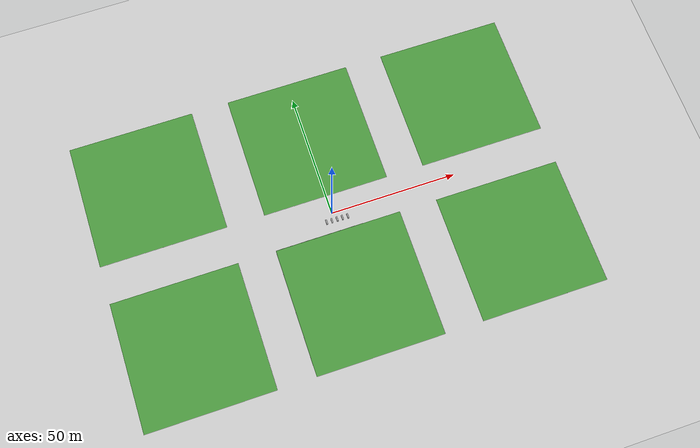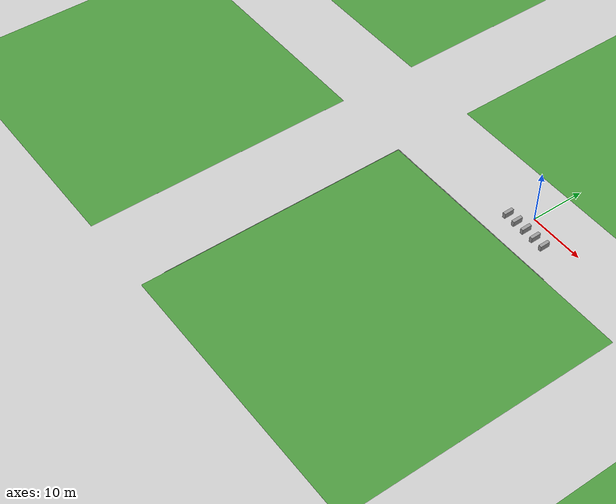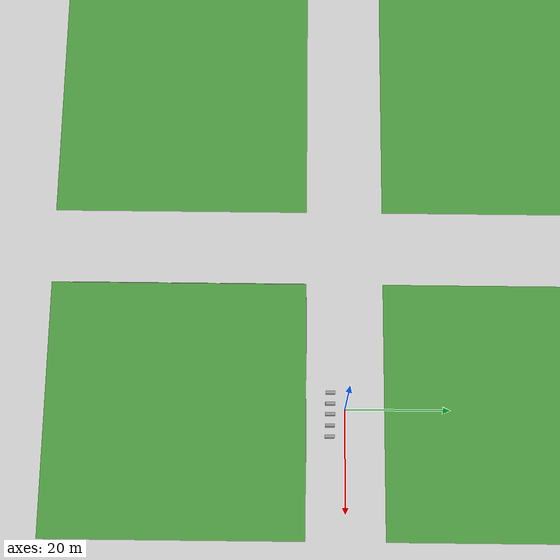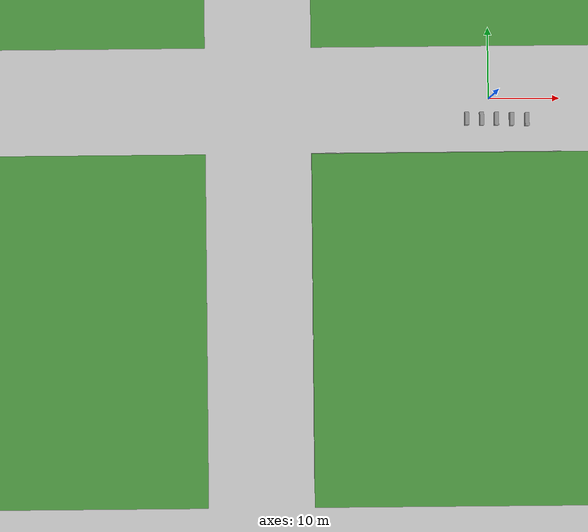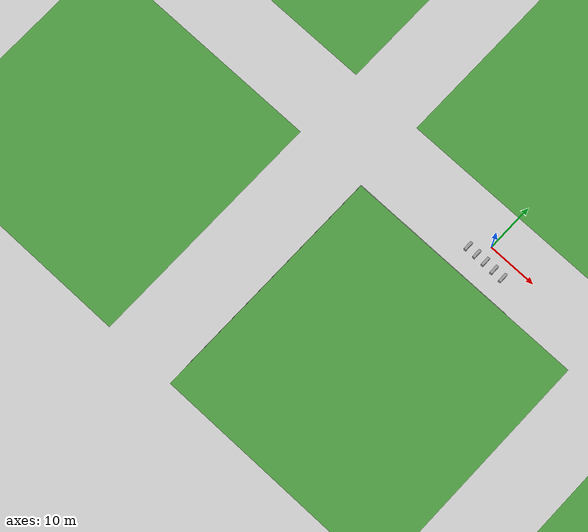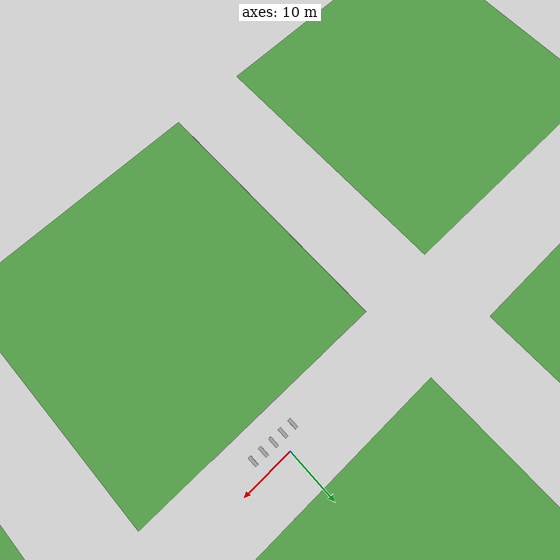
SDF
<sdf version="1.6">
 <world name="default">
  <scene>
   <grid>0</grid>
   <ambient>0.4 0.4 0.4 1</ambient>
   <background>0.7 0.7 0.7 1</background>
   <shadows>1</shadows>
  </scene>
  <light name="sun" type="directional">
   <pose>0 0 10 0 -0 0</pose>
   <diffuse>0.8 0.8 0.8 1</diffuse>
   <specular>0.2 0.2 0.2 1</specular>
   <attenuation>
    <range>1000</range>
    <constant>0.9</constant>
    <linear>0.01</linear>
    <quadratic>0.001</quadratic>
   </attenuation>
   <direction>-0.5 0.1 -0.9</direction>
  </light>
  <model name="ground_plane">
   <static>1</static>
   <link name="link">
    <collision name="collision">
     <geometry><plane><normal>0 0 1</normal><size>100 100</size></plane></geometry>
     <surface><friction><ode><mu>100</mu><mu2>50</mu2></ode></friction></surface>
    </collision>
    <visual name="visual">
     <cast_shadows>0</cast_shadows>
     <geometry><plane><normal>0 0 1</normal><size>100 100</size></plane></geometry>
     <material>
      <script><uri>file://media/materials/scripts/gazebo.material</uri><name>Gazebo/Grey</name></script>
     </material>
    </visual>
   </link>
  </model>
  <gravity>0 0 -9.8</gravity>
  <magnetic_field>6e-06 2.3e-05 -4.2e-05</magnetic_field>
  <atmosphere type="adiabatic"/>
  <physics name="default_physics" default="0" type="ode">
   <max_step_size>0.001</max_step_size>
   <real_time_factor>1</real_time_factor>
   <real_time_update_rate>1000</real_time_update_rate>
  </physics>
  <audio><device>default</device></audio>
  <spherical_coordinates>
   <surface_model>EARTH_WGS84</surface_model>
   <latitude_deg>0</latitude_deg>
   <longitude_deg>0</longitude_deg>
   <elevation>0</elevation>
   <heading_deg>0</heading_deg>
  </spherical_coordinates>
  <model name="grass_plane">
   <static>1</static>
   <link name="link">
    <collision name="collision"><geometry><box><size>50 50 0.001</size></box></geometry></collision>
    <visual name="visual">
     <cast_shadows>0</cast_shadows>
     <geometry><box><size>50 50 0.001</size></box></geometry>
     <material>
      <script>
       <uri>model://grass_plane/materials/scripts</uri>
       <uri>model://grass_plane/materials/textures</uri>
       <name>vrc/grass_plane</name>
      </script>
     </material>
    </visual>
   </link>
   <pose>0 32.5 0 0 -0 0</pose>
  </model>
  <model name="grass_plane_0">
   <static>1</static>
   <link name="link">
    <collision name="collision"><geometry><box><size>50 50 0.001</size></box></geometry></collision>
    <visual name="visual">
     <cast_shadows>0</cast_shadows>
     <geometry><box><size>50 50 0.001</size></box></geometry>
     <material>
      <script>
       <uri>model://grass_plane/materials/scripts</uri>
       <uri>model://grass_plane/materials/textures</uri>
       <name>vrc/grass_plane</name>
      </script>
     </material>
    </visual>
   </link>
   <pose>0 -32.5 0 0 -0 0</pose>
  </model>
  <model name="grass_plane_clone">
   <static>1</static>
   <link name="link">
    <collision name="collision"><geometry><box><size>50 50 0.001</size></box></geometry></collision>
    <visual name="visual">
     <cast_shadows>0</cast_shadows>
     <geometry><box><size>50 50 0.001</size></box></geometry>
     <material>
      <script>
       <uri>model://grass_plane/materials/scripts</uri>
       <uri>model://grass_plane/materials/textures</uri>
       <name>vrc/grass_plane</name>
      </script>
     </material>
    </visual>
   </link>
   <pose>-65 32.5 0 0 -0 0</pose>
  </model>
  <model name="grass_plane_clone_0">
   <static>1</static>
   <link name="link">
    <collision name="collision"><geometry><box><size>50 50 0.001</size></box></geometry></collision>
    <visual name="visual">
     <cast_shadows>0</cast_shadows>
     <geometry><box><size>50 50 0.001</size></box></geometry>
     <material>
      <script>
       <uri>model://grass_plane/materials/scripts</uri>
       <uri>model://grass_plane/materials/textures</uri>
       <name>vrc/grass_plane</name>
      </script>
     </material>
    </visual>
   </link>
   <pose>-65 -32.5 0 0 -0 0</pose>
  </model>
  <model name="grass_plane_clone_1">
   <static>1</static>
   <link name="link">
    <collision name="collision"><geometry><box><size>50 50 0.001</size></box></geometry></collision>
    <visual name="visual">
     <cast_shadows>0</cast_shadows>
     <geometry><box><size>50 50 0.001</size></box></geometry>
     <material>
      <script>
       <uri>model://grass_plane/materials/scripts</uri>
       <uri>model://grass_plane/materials/textures</uri>
       <name>vrc/grass_plane</name>
      </script>
     </material>
    </visual>
   </link>
   <pose>65 -32.5 0 0 -0 0</pose>
  </model>
  <model name="grass_plane_clone_2">
   <static>1</static>
   <link name="link">
    <collision name="collision"><geometry><box><size>50 50 0.001</size></box></geometry></collision>
    <visual name="visual">
     <cast_shadows>0</cast_shadows>
     <geometry><box><size>50 50 0.001</size></box></geometry>
     <material>
      <script>
       <uri>model://grass_plane/materials/scripts</uri>
       <uri>model://grass_plane/materials/textures</uri>
       <name>vrc/grass_plane</name>
      </script>
     </material>
    </visual>
   </link>
   <pose>65 32.5 0 0 -0 0</pose>
  </model>
  <model name="unit_box_clone">
   <pose>-25.0327 -12.7805 0.028701 0.000184 0.000354 0.000251</pose>
   <link name="link">
    <inertial>
     <mass>1</mass>
     <inertia>
      <ixx>0.166667</ixx>
      <ixy>0</ixy>
      <ixz>0</ixz>
      <iyy>0.166667</iyy>
      <iyz>0</iyz>
      <izz>0.166667</izz>
     </inertia>
    </inertial>
    <collision name="collision"><geometry><box><size>0.06452 3.52822 0.058026</size></box></geometry></collision>
    <visual name="visual">
     <geometry><box><size>0.06452 3.52822 0.058026</size></box></geometry>
     <material>
      <script><name>Gazebo/Grey</name><uri>file://media/materials/scripts/gazebo.material</uri></script>
     </material>
    </visual>
   </link>
  </model>
  <model name="unit_box_clone_clone">
   <pose>-25.0326 -16.3088 0.02882 -0.000115 0.000307 -0.000163</pose>
   <link name="link">
    <inertial>
     <mass>1</mass>
     <inertia>
      <ixx>0.166667</ixx>
      <ixy>0</ixy>
      <ixz>0</ixz>
      <iyy>0.166667</iyy>
      <iyz>0</iyz>
      <izz>0.166667</izz>
     </inertia>
    </inertial>
    <collision name="collision"><geometry><box><size>0.06452 3.52822 0.058026</size></box></geometry></collision>
    <visual name="visual">
     <geometry><box><size>0.06452 3.52822 0.058026</size></box></geometry>
     <material>
      <script><name>Gazebo/Grey</name><uri>file://media/materials/scripts/gazebo.material</uri></script>
     </material>
    </visual>
   </link>
  </model>
  <model name="unit_box_clone_clone_0">
   <pose>-25.0339 -19.8408 0.028668 0.000202 -0.000347 -0.000881</pose>
   <link name="link">
    <inertial>
     <mass>1</mass>
     <inertia>
      <ixx>0.166667</ixx>
      <ixy>0</ixy>
      <ixz>0</ixz>
      <iyy>0.166667</iyy>
      <iyz>0</iyz>
      <izz>0.166667</izz>
     </inertia>
    </inertial>
    <collision name="collision"><geometry><box><size>0.06452 3.52822 0.058026</size></box></geometry></collision>
    <visual name="visual">
     <geometry><box><size>0.06452 3.52822 0.058026</size></box></geometry>
     <material>
      <script><name>Gazebo/Grey</name><uri>file://media/materials/scripts/gazebo.material</uri></script>
     </material>
    </visual>
   </link>
  </model>
  <model name="unit_box_clone_clone_1">
   <pose>-25.0381 -23.3791 0.028669 -0.000201 -0.000357 -0.003093</pose>
   <link name="link">
    <inertial>
     <mass>1</mass>
     <inertia>
      <ixx>0.166667</ixx>
      <ixy>0</ixy>
      <ixz>0</ixz>
      <iyy>0.166667</iyy>
      <iyz>0</iyz>
      <izz>0.166667</izz>
     </inertia>
    </inertial>
    <collision name="collision"><geometry><box><size>0.06452 3.52822 0.058026</size></box></geometry></collision>
    <visual name="visual">
     <geometry><box><size>0.06452 3.52822 0.058026</size></box></geometry>
     <material>
      <script><name>Gazebo/Grey</name><uri>file://media/materials/scripts/gazebo.material</uri></script>
     </material>
    </visual>
   </link>
  </model>
  <model name="unit_box_clone_clone_2">
   <pose>-25.0341 -26.9075 0.028669 0.000201 0.000357 0.000968</pose>
   <link name="link">
    <inertial>
     <mass>1</mass>
     <inertia>
      <ixx>0.166667</ixx>
      <ixy>0</ixy>
      <ixz>0</ixz>
      <iyy>0.166667</iyy>
      <iyz>0</iyz>
      <izz>0.166667</izz>
     </inertia>
    </inertial>
    <collision name="collision"><geometry><box><size>0.06452 3.52822 0.058026</size></box></geometry></collision>
    <visual name="visual">
     <geometry><box><size>0.06452 3.52822 0.058026</size></box></geometry>
     <material>
      <script><name>Gazebo/Grey</name><uri>file://media/materials/scripts/gazebo.material</uri></script>
     </material>
    </visual>
   </link>
  </model>
  <model name="unit_box_clone_clone_1_clone">
   <pose>-23.3067 -7.44178 0.028303 0.000405 -0.000118 -1.56988</pose>
   <link name="link">
    <inertial>
     <mass>1</mass>
     <inertia>
      <ixx>0.166667</ixx>
      <ixy>0</ixy>
      <ixz>0</ixz>
      <iyy>0.166667</iyy>
      <iyz>0</iyz>
      <izz>0.166667</izz>
     </inertia>
    </inertial>
    <collision name="collision"><geometry><box><size>0.06452 3.52822 0.058026</size></box></geometry></collision>
    <visual name="visual">
     <geometry><box><size>0.06452 3.52822 0.058026</size></box></geometry>
     <material>
      <script><name>Gazebo/Grey</name><uri>file://media/materials/scripts/gazebo.material</uri></script>
     </material>
    </visual>
   </link>
  </model>
  <model name="unit_box_clone_clone_1_clone_clone">
   <pose>-19.7784 -7.46109 0.028639 -0.000219 -0.000367 -1.5709</pose>
   <link name="link">
    <inertial>
     <mass>1</mass>
     <inertia>
      <ixx>0.166667</ixx>
      <ixy>0</ixy>
      <ixz>0</ixz>
      <iyy>0.166667</iyy>
      <iyz>0</iyz>
      <izz>0.166667</izz>
     </inertia>
    </inertial>
    <collision name="collision"><geometry><box><size>0.06452 3.52822 0.058026</size></box></geometry></collision>
    <visual name="visual">
     <geometry><box><size>0.06452 3.52822 0.058026</size></box></geometry>
     <material>
      <script><name>Gazebo/Grey</name><uri>file://media/materials/scripts/gazebo.material</uri></script>
     </material>
    </visual>
   </link>
  </model>
  <model name="unit_box_clone_clone_1_clone_clone_0">
   <pose>-16.2501 -7.4662 0.028388 -0.000354 0.000271 -1.56998</pose>
   <link name="link">
    <inertial>
     <mass>1</mass>
     <inertia>
      <ixx>0.166667</ixx>
      <ixy>0</ixy>
      <ixz>0</ixz>
      <iyy>0.166667</iyy>
      <iyz>0</iyz>
      <izz>0.166667</izz>
     </inertia>
    </inertial>
    <collision name="collision"><geometry><box><size>0.06452 3.52822 0.058026</size></box></geometry></collision>
    <visual name="visual">
     <geometry><box><size>0.06452 3.52822 0.058026</size></box></geometry>
     <material>
      <script><name>Gazebo/Grey</name><uri>file://media/materials/scripts/gazebo.material</uri></script>
     </material>
    </visual>
   </link>
  </model>
  <model name="unit_box_clone_clone_1_clone_clone_1">
   <pose>-12.7219 -7.44012 0.028306 -0.000403 0.000133 -1.57009</pose>
   <link name="link">
    <inertial>
     <mass>1</mass>
     <inertia>
      <ixx>0.166667</ixx>
      <ixy>0</ixy>
      <ixz>0</ixz>
      <iyy>0.166667</iyy>
      <iyz>0</iyz>
      <izz>0.166667</izz>
     </inertia>
    </inertial>
    <collision name="collision"><geometry><box><size>0.06452 3.52822 0.058026</size></box></geometry></collision>
    <visual name="visual">
     <geometry><box><size>0.06452 3.52822 0.058026</size></box></geometry>
     <material>
      <script><name>Gazebo/Grey</name><uri>file://media/materials/scripts/gazebo.material</uri></script>
     </material>
    </visual>
   </link>
  </model>
  <model name="unit_box_clone_clone_1_clone_clone_2">
   <pose>-9.19365 -7.46404 0.028374 -0.000363 6.8e-05 -1.57135</pose>
   <link name="link">
    <inertial>
     <mass>1</mass>
     <inertia>
      <ixx>0.166667</ixx>
      <ixy>0</ixy>
      <ixz>0</ixz>
      <iyy>0.166667</iyy>
      <iyz>0</iyz>
      <izz>0.166667</izz>
     </inertia>
    </inertial>
    <collision name="collision"><geometry><box><size>0.06452 3.52822 0.058026</size></box></geometry></collision>
    <visual name="visual">
     <geometry><box><size>0.06452 3.52822 0.058026</size></box></geometry>
     <material>
      <script><name>Gazebo/Grey</name><uri>file://media/materials/scripts/gazebo.material</uri></script>
     </material>
    </visual>
   </link>
  </model>
  <model name="unit_box_clone_clone_1_clone_clone_3">
   <pose>-5.66536 -7.46127 0.028359 0.000374 -0.000162 -1.56923</pose>
   <link name="link">
    <inertial>
     <mass>1</mass>
     <inertia>
      <ixx>0.166667</ixx>
      <ixy>0</ixy>
      <ixz>0</ixz>
      <iyy>0.166667</iyy>
      <iyz>0</iyz>
      <izz>0.166667</izz>
     </inertia>
    </inertial>
    <collision name="collision"><geometry><box><size>0.06452 3.52822 0.058026</size></box></geometry></collision>
    <visual name="visual">
     <geometry><box><size>0.06452 3.52822 0.058026</size></box></geometry>
     <material>
      <script><name>Gazebo/Grey</name><uri>file://media/materials/scripts/gazebo.material</uri></script>
     </material>
    </visual>
   </link>
  </model>
  <model name="unit_box_clone_clone_1_clone_clone_4">
   <pose>-2.13705 -7.45227 0.02852 0.000286 0.000346 -1.5712</pose>
   <link name="link">
    <inertial>
     <mass>1</mass>
     <inertia>
      <ixx>0.166667</ixx>
      <ixy>0</ixy>
      <ixz>0</ixz>
      <iyy>0.166667</iyy>
      <iyz>0</iyz>
      <izz>0.166667</izz>
     </inertia>
    </inertial>
    <collision name="collision"><geometry><box><size>0.06452 3.52822 0.058026</size></box></geometry></collision>
    <visual name="visual">
     <geometry><box><size>0.06452 3.52822 0.058026</size></box></geometry>
     <material>
      <script><name>Gazebo/Grey</name><uri>file://media/materials/scripts/gazebo.material</uri></script>
     </material>
    </visual>
   </link>
  </model>
  <model name="unit_box_clone_clone_1_clone_clone_5">
   <pose>1.39122 -7.46688 0.029016 0 -9e-05 -1.57031</pose>
   <link name="link">
    <inertial>
     <mass>1</mass>
     <inertia>
      <ixx>0.166667</ixx>
      <ixy>0</ixy>
      <ixz>0</ixz>
      <iyy>0.166667</iyy>
      <iyz>0</iyz>
      <izz>0.166667</izz>
     </inertia>
    </inertial>
    <collision name="collision"><geometry><box><size>0.06452 3.52822 0.058026</size></box></geometry></collision>
    <visual name="visual">
     <geometry><box><size>0.06452 3.52822 0.058026</size></box></geometry>
     <material>
      <script><name>Gazebo/Grey</name><uri>file://media/materials/scripts/gazebo.material</uri></script>
     </material>
    </visual>
   </link>
  </model>
  <model name="unit_box_clone_clone_1_clone_clone_6">
   <pose>4.91947 -7.46518 0.028348 0.00038 0.000177 -1.56987</pose>
   <link name="link">
    <inertial>
     <mass>1</mass>
     <inertia>
      <ixx>0.166667</ixx>
      <ixy>0</ixy>
      <ixz>0</ixz>
      <iyy>0.166667</iyy>
      <iyz>0</iyz>
      <izz>0.166667</izz>
     </inertia>
    </inertial>
    <collision name="collision"><geometry><box><size>0.06452 3.52822 0.058026</size></box></geometry></collision>
    <visual name="visual">
     <geometry><box><size>0.06452 3.52822 0.058026</size></box></geometry>
     <material>
      <script><name>Gazebo/Grey</name><uri>file://media/materials/scripts/gazebo.material</uri></script>
     </material>
    </visual>
   </link>
  </model>
  <model name="unit_box_clone_clone_1_clone_clone_7">
   <pose>8.44773 -7.46109 0.028461 0.000319 0.000326 -1.57045</pose>
   <link name="link">
    <inertial>
     <mass>1</mass>
     <inertia>
      <ixx>0.166667</ixx>
      <ixy>0</ixy>
      <ixz>0</ixz>
      <iyy>0.166667</iyy>
      <iyz>0</iyz>
      <izz>0.166667</izz>
     </inertia>
    </inertial>
    <collision name="collision"><geometry><box><size>0.06452 3.52822 0.058026</size></box></geometry></collision>
    <visual name="visual">
     <geometry><box><size>0.06452 3.52822 0.058026</size></box></geometry>
     <material>
      <script><name>Gazebo/Grey</name><uri>file://media/materials/scripts/gazebo.material</uri></script>
     </material>
    </visual>
   </link>
  </model>
  <model name="unit_box_clone_clone_2_clone">
   <pose>-25.0397 -30.455 0.028789 0.000133 -0.000321 -0.001221</pose>
   <link name="link">
    <inertial>
     <mass>1</mass>
     <inertia>
      <ixx>0.166667</ixx>
      <ixy>0</ixy>
      <ixz>0</ixz>
      <iyy>0.166667</iyy>
      <iyz>0</iyz>
      <izz>0.166667</izz>
     </inertia>
    </inertial>
    <collision name="collision"><geometry><box><size>0.06452 3.52822 0.058026</size></box></geometry></collision>
    <visual name="visual">
     <geometry><box><size>0.06452 3.52822 0.058026</size></box></geometry>
     <material>
      <script><name>Gazebo/Grey</name><uri>file://media/materials/scripts/gazebo.material</uri></script>
     </material>
    </visual>
   </link>
  </model>
  <model name="unit_box_clone_clone_2_clone_0">
   <pose>-25.04 -33.9833 0.028668 0.000202 0.000347 0.000277</pose>
   <link name="link">
    <inertial>
     <mass>1</mass>
     <inertia>
      <ixx>0.166667</ixx>
      <ixy>0</ixy>
      <ixz>0</ixz>
      <iyy>0.166667</iyy>
      <iyz>0</iyz>
      <izz>0.166667</izz>
     </inertia>
    </inertial>
    <collision name="collision"><geometry><box><size>0.06452 3.52822 0.058026</size></box></geometry></collision>
    <visual name="visual">
     <geometry><box><size>0.06452 3.52822 0.058026</size></box></geometry>
     <material>
      <script><name>Gazebo/Grey</name><uri>file://media/materials/scripts/gazebo.material</uri></script>
     </material>
    </visual>
   </link>
  </model>
  <model name="unit_box_clone_clone_2_clone_1">
   <pose>-25.0333 -37.5116 0.028668 0.000202 -0.000347 0.000523</pose>
   <link name="link">
    <inertial>
     <mass>1</mass>
     <inertia>
      <ixx>0.166667</ixx>
      <ixy>0</ixy>
      <ixz>0</ixz>
      <iyy>0.166667</iyy>
      <iyz>0</iyz>
      <izz>0.166667</izz>
     </inertia>
    </inertial>
    <collision name="collision"><geometry><box><size>0.06452 3.52822 0.058026</size></box></geometry></collision>
    <visual name="visual">
     <geometry><box><size>0.06452 3.52822 0.058026</size></box></geometry>
     <material>
      <script><name>Gazebo/Grey</name><uri>file://media/materials/scripts/gazebo.material</uri></script>
     </material>
    </visual>
   </link>
  </model>
  <model name="unit_box_clone_clone_2_clone_2">
   <pose>-25.0327 -41.0398 0.028669 0.000201 0.000357 0.000268</pose>
   <link name="link">
    <inertial>
     <mass>1</mass>
     <inertia>
      <ixx>0.166667</ixx>
      <ixy>0</ixy>
      <ixz>0</ixz>
      <iyy>0.166667</iyy>
      <iyz>0</iyz>
      <izz>0.166667</izz>
     </inertia>
    </inertial>
    <collision name="collision"><geometry><box><size>0.06452 3.52822 0.058026</size></box></geometry></collision>
    <visual name="visual">
     <geometry><box><size>0.06452 3.52822 0.058026</size></box></geometry>
     <material>
      <script><name>Gazebo/Grey</name><uri>file://media/materials/scripts/gazebo.material</uri></script>
     </material>
    </visual>
   </link>
  </model>
  <model name="unit_box_clone_clone_2_clone_3">
   <pose>-25.0328 -44.5681 0.028668 0.000202 -0.000347 0.000263</pose>
   <link name="link">
    <inertial>
     <mass>1</mass>
     <inertia>
      <ixx>0.166667</ixx>
      <ixy>0</ixy>
      <ixz>0</ixz>
      <iyy>0.166667</iyy>
      <iyz>0</iyz>
      <izz>0.166667</izz>
     </inertia>
    </inertial>
    <collision name="collision"><geometry><box><size>0.06452 3.52822 0.058026</size></box></geometry></collision>
    <visual name="visual">
     <geometry><box><size>0.06452 3.52822 0.058026</size></box></geometry>
     <material>
      <script><name>Gazebo/Grey</name><uri>file://media/materials/scripts/gazebo.material</uri></script>
     </material>
    </visual>
   </link>
  </model>
  <model name="unit_box_clone_clone_2_clone_4">
   <pose>-25.0336 -48.0964 0.028698 -0.000185 0.000351 0.000171</pose>
   <link name="link">
    <inertial>
     <mass>1</mass>
     <inertia>
      <ixx>0.166667</ixx>
      <ixy>0</ixy>
      <ixz>0</ixz>
      <iyy>0.166667</iyy>
      <iyz>0</iyz>
      <izz>0.166667</izz>
     </inertia>
    </inertial>
    <collision name="collision"><geometry><box><size>0.06452 3.52822 0.058026</size></box></geometry></collision>
    <visual name="visual">
     <geometry><box><size>0.06452 3.52822 0.058026</size></box></geometry>
     <material>
      <script><name>Gazebo/Grey</name><uri>file://media/materials/scripts/gazebo.material</uri></script>
     </material>
    </visual>
   </link>
  </model>
  <model name="unit_box_clone_clone_2_clone_5">
   <pose>-25.0333 -51.6247 0.028541 -0.000274 -0.000341 -0.000585</pose>
   <link name="link">
    <inertial>
     <mass>1</mass>
     <inertia>
      <ixx>0.166667</ixx>
      <ixy>0</ixy>
      <ixz>0</ixz>
      <iyy>0.166667</iyy>
      <iyz>0</iyz>
      <izz>0.166667</izz>
     </inertia>
    </inertial>
    <collision name="collision"><geometry><box><size>0.06452 3.52822 0.058026</size></box></geometry></collision>
    <visual name="visual">
     <geometry><box><size>0.06452 3.52822 0.058026</size></box></geometry>
     <material>
      <script><name>Gazebo/Grey</name><uri>file://media/materials/scripts/gazebo.material</uri></script>
     </material>
    </visual>
   </link>
  </model>
  <model name="unit_box_clone_clone_3">
   <pose>-25.0331 -9.24795 0.028669 -0.000201 -0.000357 0.000253</pose>
   <link name="link">
    <inertial>
     <mass>1</mass>
     <inertia>
      <ixx>0.166667</ixx>
      <ixy>0</ixy>
      <ixz>0</ixz>
      <iyy>0.166667</iyy>
      <iyz>0</iyz>
      <izz>0.166667</izz>
     </inertia>
    </inertial>
    <collision name="collision"><geometry><box><size>0.06452 3.52822 0.058026</size></box></geometry></collision>
    <visual name="visual">
     <geometry><box><size>0.06452 3.52822 0.058026</size></box></geometry>
     <material>
      <script><name>Gazebo/Grey</name><uri>file://media/materials/scripts/gazebo.material</uri></script>
     </material>
    </visual>
   </link>
  </model>
  <model name="unit_box">
   <pose>5.31667 -2.99023 0.499992 8e-06 -0 0.010193</pose>
   <link name="link">
    <inertial>
     <mass>1</mass>
     <inertia>
      <ixx>0.166667</ixx>
      <ixy>0</ixy>
      <ixz>0</ixz>
      <iyy>0.166667</iyy>
      <iyz>0</iyz>
      <izz>0.166667</izz>
     </inertia>
    </inertial>
    <collision name="collision"><geometry><box><size>0.563009 1.84854 1</size></box></geometry></collision>
    <visual name="visual">
     <geometry><box><size>0.563009 1.84854 1</size></box></geometry>
     <material>
      <script><name>Gazebo/Grey</name><uri>file://media/materials/scripts/gazebo.material</uri></script>
     </material>
    </visual>
   </link>
  </model>
  <model name="unit_box_clone_0">
   <pose>3.17395 -2.92276 0.499992 8e-06 -0 0.010116</pose>
   <link name="link">
    <inertial>
     <mass>1</mass>
     <inertia>
      <ixx>0.166667</ixx>
      <ixy>0</ixy>
      <ixz>0</ixz>
      <iyy>0.166667</iyy>
      <iyz>0</iyz>
      <izz>0.166667</izz>
     </inertia>
    </inertial>
    <collision name="collision"><geometry><box><size>0.563009 1.84854 1</size></box></geometry></collision>
    <visual name="visual">
     <geometry><box><size>0.563009 1.84854 1</size></box></geometry>
     <material>
      <script><name>Gazebo/Grey</name><uri>file://media/materials/scripts/gazebo.material</uri></script>
     </material>
    </visual>
   </link>
  </model>
  <model name="unit_box_clone_0_clone">
   <pose>1.03155 -2.87032 0.499992 -8e-06 0 0.010156</pose>
   <link name="link">
    <inertial>
     <mass>1</mass>
     <inertia>
      <ixx>0.166667</ixx>
      <ixy>0</ixy>
      <ixz>0</ixz>
      <iyy>0.166667</iyy>
      <iyz>0</iyz>
      <izz>0.166667</izz>
     </inertia>
    </inertial>
    <collision name="collision"><geometry><box><size>0.563009 1.84854 1</size></box></geometry></collision>
    <visual name="visual">
     <geometry><box><size>0.563009 1.84854 1</size></box></geometry>
     <material>
      <script><name>Gazebo/Grey</name><uri>file://media/materials/scripts/gazebo.material</uri></script>
     </material>
    </visual>
   </link>
  </model>
  <model name="unit_box_clone_0_clone_clone">
   <pose>-1.04772 -2.8524 0.499992 8e-06 -0 0.010163</pose>
   <link name="link">
    <inertial>
     <mass>1</mass>
     <inertia>
      <ixx>0.166667</ixx>
      <ixy>0</ixy>
      <ixz>0</ixz>
      <iyy>0.166667</iyy>
      <iyz>0</iyz>
      <izz>0.166667</izz>
     </inertia>
    </inertial>
    <collision name="collision"><geometry><box><size>0.563009 1.84854 1</size></box></geometry></collision>
    <visual name="visual">
     <geometry><box><size>0.563009 1.84854 1</size></box></geometry>
     <material>
      <script><name>Gazebo/Grey</name><uri>file://media/materials/scripts/gazebo.material</uri></script>
     </material>
    </visual>
   </link>
  </model>
  <model name="unit_box_clone_0_clone_clone_clone">
   <pose>-3.1507 -2.80855 0.499992 -8e-06 -0 0.010166</pose>
   <link name="link">
    <inertial>
     <mass>1</mass>
     <inertia>
      <ixx>0.166667</ixx>
      <ixy>0</ixy>
      <ixz>0</ixz>
      <iyy>0.166667</iyy>
      <iyz>0</iyz>
      <izz>0.166667</izz>
     </inertia>
    </inertial>
    <collision name="collision"><geometry><box><size>0.563009 1.84854 1</size></box></geometry></collision>
    <visual name="visual">
     <geometry><box><size>0.563009 1.84854 1</size></box></geometry>
     <material>
      <script><name>Gazebo/Grey</name><uri>file://media/materials/scripts/gazebo.material</uri></script>
     </material>
    </visual>
   </link>
  </model>
 </world>
</sdf>
